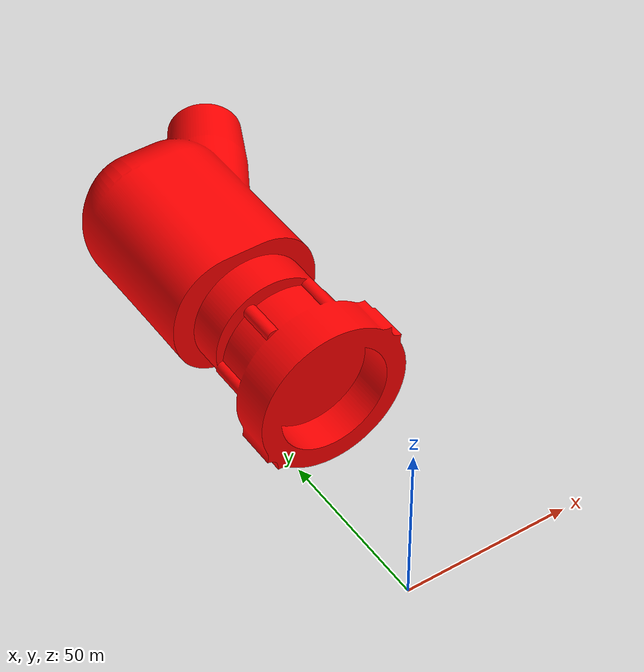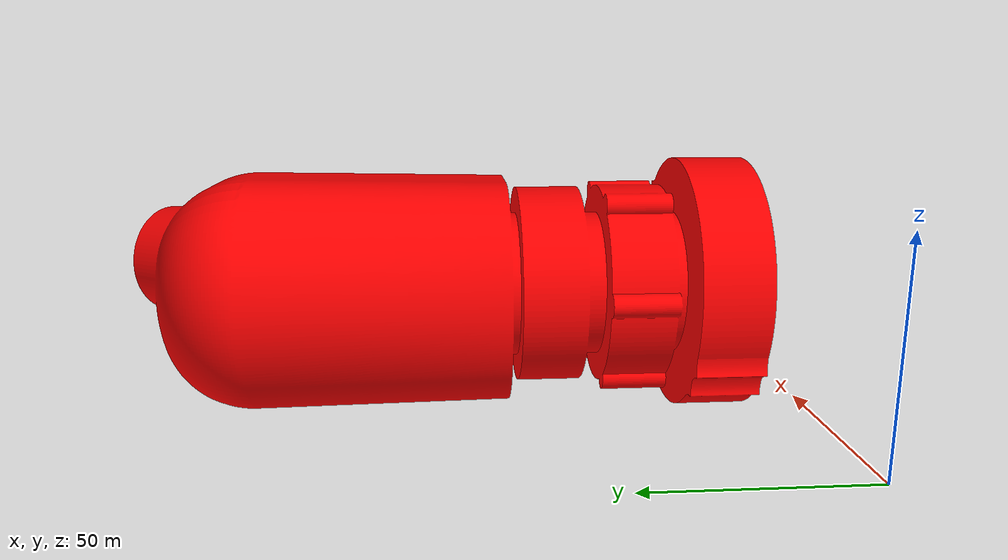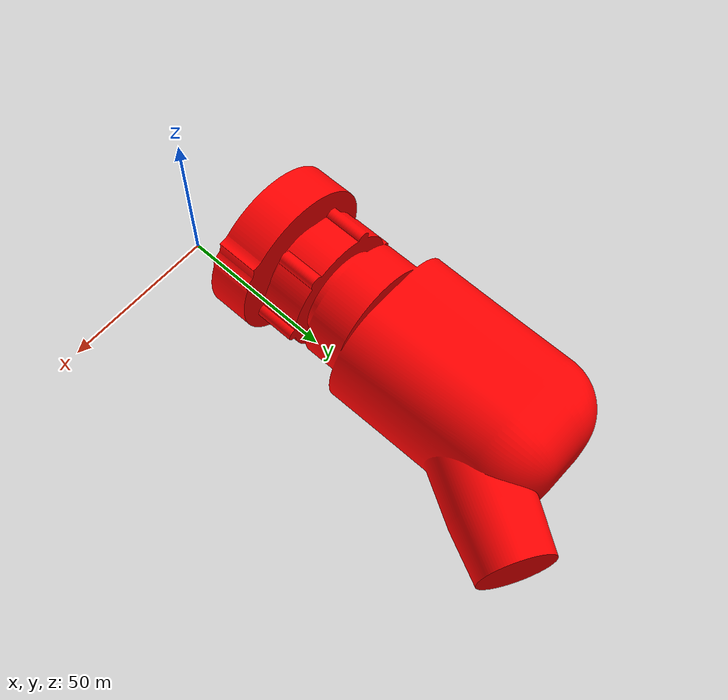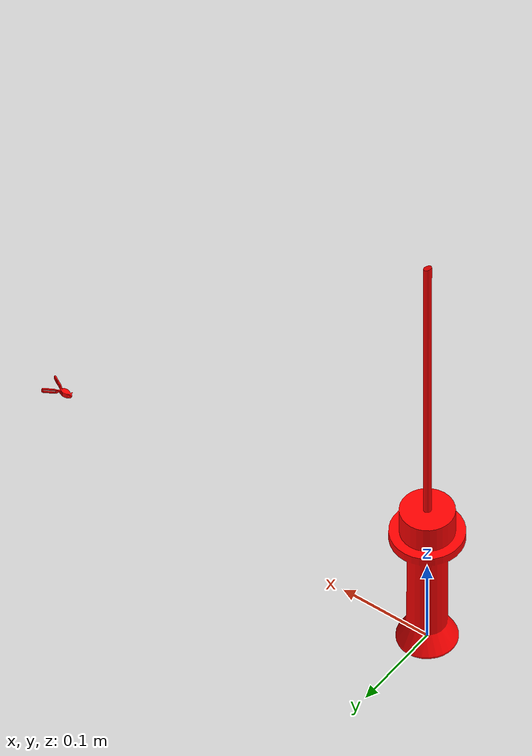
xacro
<?xml version="1.0"?>

<!-- Here we define the robot, we named it "gripper" -->
<robot xmlns:xacro="http://www.ros.org/wiki/xacro" name="gripper">

    <!--Import the gripper macro -->
    <xacro:include filename="$(find da_vinci_gripper_description)/urdf/da_vinci_gripper.xacro"/>

    <!--  Arguments for the med7 macro  -->
    <xacro:arg name="hardware_interface" default="PositionJointInterface"/>
    <xacro:arg name="gripper_name" default="gripper"/>

    <!-- fix to world -->
    <link name="world"/>

    <!-- insert gripper -->
    <xacro:gripper  gripper_name="$(arg gripper_name)" hardware_interface="$(arg hardware_interface)" parent="world"/>

</robot>

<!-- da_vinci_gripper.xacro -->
<robot xmlns:xacro="http://www.ros.org/wiki/xacro">

    <xacro:macro name="gripper" params="gripper_name hardware_interface parent">

        <!-- include gazebo specifications -->
        <xacro:include filename="$(find da_vinci_gripper_description)/urdf/da_vinci_gripper.gazebo.xacro"/>

        <!-- include transmission for ros_control -->
        <xacro:include filename="$(find da_vinci_gripper_description)/urdf/da_vinci_gripper.transmission.xacro"/>

        <!--joint between {parent} and link_0-->
        <joint name="${parent}_${gripper_name}_joint" type="fixed">
            <parent link="${parent}"/>
            <child link="${gripper_name}_link_0"/>
            <origin rpy="0 0 1.57079632679" xyz="0 0 0"/>
        </joint>

        <link name="${gripper_name}_link_0">
            <inertial>
                <origin rpy="0 0 0" xyz="-6.432910810921765e-05 -0.01226896702938846 0.04229819263832419"/>
                <mass value="3.001662804726904"/>
                <inertia ixx="0.013056" ixy="1e-05" ixz="4e-06" iyy="0.002133" iyz="0.000838" izz="0.012592"/>
            </inertial>
            <visual>
                <origin rpy="0 0 0" xyz="0 0 0"/>
                <geometry>
                    <mesh filename="package://da_vinci_gripper_description/meshes/visual/link_0.stl"/>
                </geometry>
                <material name="silver">
                    <color rgba="1 0 0 1"/>
                </material>
            </visual>
            <collision>
                <origin rpy="0 0 0" xyz="0 0 0"/>
                <geometry>
                    <mesh filename="package://da_vinci_gripper_description/meshes/collision/link_0.stl"/>
                </geometry>
            </collision>
        </link>

        <joint name="${gripper_name}_joint_1" type="continuous">
            <origin rpy="0 0 0" xyz="0.0 -0.417886 0.064767"/>
            <parent link="${gripper_name}_link_0"/>
            <child link="${gripper_name}_link_1"/>
            <axis xyz="-0.0 -0.01 8.3e-05"/>
        </joint>

        <link name="${gripper_name}_link_1">
            <inertial>
                <origin rpy="0 0 0" xyz="7.83131813835923e-13 -0.00327664993849075 2.7009925125554002e-05"/>
                <mass value="0.0026081265321506496"/>
                <inertia ixx="0.0" ixy="-0.0" ixz="0.0" iyy="0.0" iyz="0.0" izz="0.0"/>
            </inertial>
            <visual>
                <origin rpy="0 0 0" xyz="0.0 0.417886 -0.064767"/>
                <geometry>
                    <mesh filename="package://da_vinci_gripper_description/meshes/visual/link_1.stl"/>
                </geometry>
                <material name="silver">
                    <color rgba="1 0 0 1"/>
                </material>
            </visual>
            <collision>
                <origin rpy="0 0 0" xyz="0.0 0.417886 -0.064767"/>
                <geometry>
                    <mesh filename="package://da_vinci_gripper_description/meshes/collision/link_1.stl"/>
                </geometry>
            </collision>
        </link>

        <joint name="${gripper_name}_joint_2" type="revolute">
            <origin rpy="0 0 0" xyz="0.004011 -0.0091 7.5e-05"/>
            <parent link="${gripper_name}_link_1"/>
            <child link="${gripper_name}_link_2"/>
            <axis xyz="0.01 0.0 0.0"/>
            <limit effort="100" lower="-1.570796" upper="1.570796" velocity="100"/>
        </joint>

        <link name="${gripper_name}_link_2">
            <inertial>
                <origin rpy="0 0 0" xyz="-0.004011372054136788 -0.0036950459896274435 -1.8961420446314547e-05"/>
                <mass value="0.002076310514419514"/>
                <inertia ixx="0.0" ixy="-0.0" ixz="-0.0" iyy="0.0" iyz="0.0" izz="0.0"/>
            </inertial>
            <visual>
                <origin rpy="0 0 0" xyz="-0.004011 0.426986 -0.064842"/>
                <geometry>
                    <mesh filename="package://da_vinci_gripper_description/meshes/visual/link_2.stl"/>
                </geometry>
                <material name="silver">
                    <color rgba="1 0 0 1"/>
                </material>
            </visual>
            <collision>
                <origin rpy="0 0 0" xyz="-0.004011 0.426986 -0.064842"/>
                <geometry>
                    <mesh filename="package://da_vinci_gripper_description/meshes/collision/link_2.stl"/>
                </geometry>
            </collision>
        </link>

        <joint name="${gripper_name}_joint_3" type="revolute">
            <origin rpy="0 0 0" xyz="-0.003995 -0.008884 0.001974"/>
            <parent link="${gripper_name}_link_2"/>
            <child link="${gripper_name}_link_3"/>
            <axis xyz="-8.3e-05 -8.3e-05 -0.009999"/>
            <limit effort="100" lower="-1.047198" upper="2.094395" velocity="100"/>
        </joint>

        <link name="${gripper_name}_link_3">
            <inertial>
                <origin rpy="0 0 0" xyz="0.004525594967446788 -0.006690181259015049 -0.0015230283617313073"/>
                <mass value="0.000770269058655591"/>
                <inertia ixx="0.0" ixy="0.0" ixz="0.0" iyy="0.0" iyz="-0.0" izz="0.0"/>
            </inertial>
                <visual>
                <origin rpy="0 0 0" xyz="-1.6e-05 0.43587 -0.066816"/>
                <geometry>
                    <mesh filename="package://da_vinci_gripper_description/meshes/visual/link_3.stl"/>
                </geometry>
                <material name="silver">
                    <color rgba="1 0 0 1"/>
                </material>
            </visual>
            <collision>
                <origin rpy="0 0 0" xyz="-1.6e-05 0.43587 -0.066816"/>
                <geometry>
                    <mesh filename="package://da_vinci_gripper_description/meshes/collision/link_3.stl"/>
                </geometry>
            </collision>
        </link>

        <joint name="${gripper_name}_joint_4" type="revolute">
            <origin rpy="0 0 0" xyz="-0.004028 -0.008916 -0.001926"/>
            <parent link="${gripper_name}_link_2"/>
            <child link="${gripper_name}_link_4"/>
            <axis xyz="8.3e-05 8.3e-05 0.009999"/>
            <limit effort="100" lower="-1.047198" upper="2.094395" velocity="100"/>
        </joint>

        <link name="${gripper_name}_link_4">
            <inertial>
                <origin rpy="0 0 0" xyz="-0.004531793856768577 -0.006670291152332475 0.00163086900587045"/>
                <mass value="0.0007630222199738701"/>
                <inertia ixx="0.0" ixy="-0.0" ixz="0.0" iyy="0.0" iyz="0.0" izz="0.0"/>
            </inertial>
            <visual>
                <origin rpy="0 0 0" xyz="1.7e-05 0.435902 -0.062916"/>
                <geometry>
                    <mesh filename="package://da_vinci_gripper_description/meshes/visual/link_4.stl"/>
                </geometry>
                <material name="silver">
                    <color rgba="1 0 0 1"/>
                </material>
            </visual>
            <collision>
                <origin rpy="0 0 0" xyz="1.7e-05 0.435902 -0.062916"/>
                <geometry>
                    <mesh filename="package://da_vinci_gripper_description/meshes/collision/link_4.stl"/>
                </geometry>
            </collision>
        </link>

        <joint name="${gripper_name}_joint_ee" type="fixed">
            <origin rpy="0 0 0" xyz="-0.004028 -0.028766 -0.001926"/>
            <parent link="${gripper_name}_link_2"/>
            <child link="${gripper_name}_ee"/>
        </joint>

        <link name="${gripper_name}_ee">
        </link>

        <!-- extensions -->
        <xacro:gripper_gazebo gripper_name="${gripper_name}"/>
        <xacro:gripper_transmission hardware_interface="${hardware_interface}" gripper_name="${gripper_name}"/>

    </xacro:macro>

</robot>
